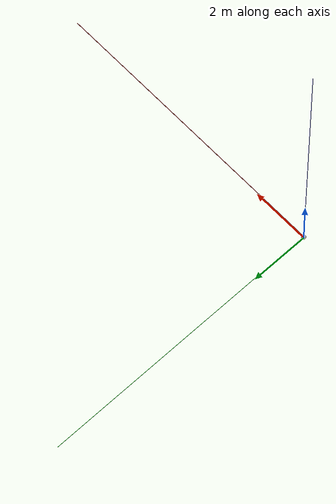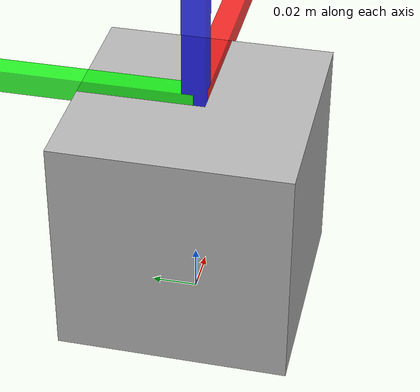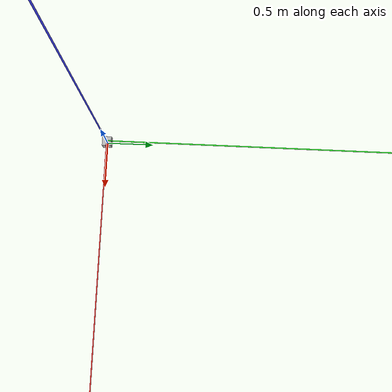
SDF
<sdf version="1.10">
 <world name="iris_runway">
  <physics name="1ms" type="ignore">
   <max_step_size>0.001</max_step_size>
   <real_time_factor>1</real_time_factor>
   <real_time_update_rate>1000</real_time_update_rate>
  </physics>
  <plugin name="gz::sim::systems::Physics" filename="gz-sim-physics-system"/>
  <plugin name="gz::sim::systems::Sensors" filename="gz-sim-sensors-system">
   <render_engine>ogre2</render_engine>
  </plugin>
  <plugin name="gz::sim::systems::UserCommands" filename="gz-sim-user-commands-system"/>
  <plugin name="gz::sim::systems::SceneBroadcaster" filename="gz-sim-scene-broadcaster-system"/>
  <plugin name="gz::sim::systems::Imu" filename="gz-sim-imu-system"/>
  <plugin name="gz::sim::systems::NavSat" filename="gz-sim-navsat-system"/>
  <scene>
   <ambient>1 1 1 1</ambient>
   <background>0.800000012 0.800000012 0.800000012 1</background>
   <shadows>true</shadows>
  </scene>
  <spherical_coordinates>
   <latitude_deg>-35.363261999999999</latitude_deg>
   <longitude_deg>149.16523699999999</longitude_deg>
   <elevation>584</elevation>
   <heading_deg>0</heading_deg>
   <surface_model>EARTH_WGS84</surface_model>
  </spherical_coordinates>
  <gravity>0 0 -9.8000000000000007</gravity>
  <magnetic_field>5.5644999999999998e-06 2.2875799999999999e-05 -4.2388400000000002e-05</magnetic_field>
  <atmosphere type="adiabatic"/>
  <model name="wideanglecamera">
   <pose>0 0 0.05 0 0 0</pose>
   <link name="link">
    <inertial><mass>0.1</mass></inertial>
    <collision name="collision"><geometry><box><size>0.1 0.1 0.1</size></box></geometry></collision>
    <visual name="visual"><geometry><box><size>0.1 0.1 0.1</size></box></geometry></visual>
    <sensor name="camera" type="wideanglecamera">
     <camera>
      <horizontal_fov>1.047</horizontal_fov>
      <image><width>320</width><height>240</height></image>
      <clip><near>0.1</near><far>100</far></clip>
      <lens>
       <type>gnomonical</type>
       <scale_to_hfov>true</scale_to_hfov>
       <cutoff_angle>1.5707</cutoff_angle>
       <env_texture_size>512</env_texture_size>
      </lens>
     </camera>
     <always_on>1</always_on>
     <update_rate>30</update_rate>
    </sensor>
   </link>
  </model>
  <model name="axes">
   <static>true</static>
   <link name="link">
    <visual name="r">
     <cast_shadows>false</cast_shadows>
     <pose>5 0 0.10000000000000001 0 0 0</pose>
     <geometry><box><size>10 0.01 0.01</size></box></geometry>
     <material>
      <ambient>1 0 0 0.800000012</ambient>
      <diffuse>1 0 0 0.800000012</diffuse>
      <emissive>1 0 0 0.800000012</emissive>
      <specular>0.5 0.5 0.5 0.800000012</specular>
     </material>
    </visual>
    <visual name="g">
     <cast_shadows>false</cast_shadows>
     <pose>0 5 0.10000000000000001 0 0 0</pose>
     <geometry><box><size>0.01 10 0.01</size></box></geometry>
     <material>
      <ambient>0 1 0 0.800000012</ambient>
      <diffuse>0 1 0 0.800000012</diffuse>
      <emissive>0 1 0 0.800000012</emissive>
      <specular>0.5 0.5 0.5 0.800000012</specular>
     </material>
    </visual>
    <visual name="b">
     <cast_shadows>false</cast_shadows>
     <pose>0 0 5.0999999999999996 0 0 0</pose>
     <geometry><box><size>0.01 0.01 10</size></box></geometry>
     <material>
      <ambient>0 0 1 0.800000012</ambient>
      <diffuse>0 0 1 0.800000012</diffuse>
      <emissive>0 0 1 0.800000012</emissive>
      <specular>0.5 0.5 0.5 0.800000012</specular>
     </material>
    </visual>
    <sensor name="navsat_sensor" type="navsat"><always_on>true</always_on><update_rate>1</update_rate></sensor>
    <inertial>
     <mass>1</mass>
     <inertia><ixx>1</ixx><ixy>0</ixy><ixz>0</ixz><iyy>1</iyy><iyz>0</iyz><izz>1</izz></inertia>
    </inertial>
   </link>
  </model>
  <light name="sun" type="directional">
   <pose>0 0 10 0 0 0</pose>
   <intensity>1</intensity>
   <direction>-0.5 0.10000000000000001 -0.90000000000000002</direction>
   <diffuse>0.800000012 0.800000012 0.800000012 1</diffuse>
   <specular>0.800000012 0.800000012 0.800000012 1</specular>
   <attenuation>
    <range>1000</range>
    <linear>0.01</linear>
    <constant>0.90000000000000002</constant>
    <quadratic>0.001</quadratic>
   </attenuation>
   <spot><inner_angle>0</inner_angle><outer_angle>0</outer_angle><falloff>0</falloff></spot>
  </light>
 </world>
</sdf>
